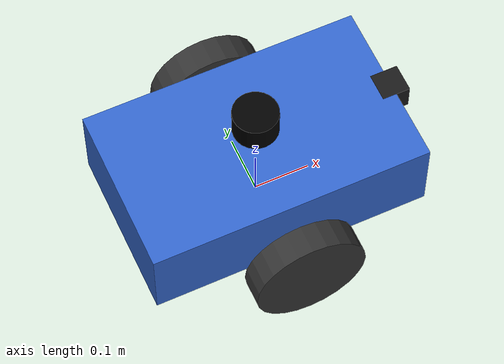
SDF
<?xml version="1.0"?>
<sdf version="1.9">
  <model name="robot">

    <link name="base_footprint">
      <pose>0 0 0 0 0 0</pose>
    </link>

    <joint name="base_footprint_joint" type="fixed">
      <parent>base_footprint</parent>
      <child>base_link</child>
    </joint>

    <link name="base_link">
      <pose>0 0 0.1 0 0 0</pose>
      <inertial>
        <mass>5.0</mass>
        <inertia><ixx>0.05</ixx><ixy>0</ixy><ixz>0</ixz><iyy>0.1</iyy><iyz>0</iyz><izz>0.1</izz></inertia>
      </inertial>
      <visual name="visual">
        <geometry><box><size>0.5 0.3 0.15</size></box></geometry>
        <material><ambient>0.2 0.4 0.8 1</ambient><diffuse>0.2 0.4 0.8 1</diffuse></material>
      </visual>
      <collision name="collision">
        <geometry><box><size>0.5 0.3 0.15</size></box></geometry>
      </collision>
    </link>

    <!-- Left wheel -->
    <link name="left_wheel">
      <pose>0 0.2 0.05 -1.5707 0 0</pose>
      <inertial>
        <mass>0.5</mass>
        <inertia><ixx>0.001</ixx><ixy>0</ixy><ixz>0</ixz><iyy>0.001</iyy><iyz>0</iyz><izz>0.002</izz></inertia>
      </inertial>
      <visual name="visual">
        <geometry><cylinder><radius>0.1</radius><length>0.05</length></cylinder></geometry>
        <material><ambient>0.2 0.2 0.2 1</ambient><diffuse>0.2 0.2 0.2 1</diffuse></material>
      </visual>
      <collision name="collision">
        <geometry><cylinder><radius>0.1</radius><length>0.05</length></cylinder></geometry>
      </collision>
    </link>

    <joint name="left_wheel_joint" type="revolute">
      <parent>base_link</parent>
      <child>left_wheel</child>
      <axis><xyz>0 0 1</xyz><limit><lower>-1e16</lower><upper>1e16</upper></limit></axis>
    </joint>

    <!-- Right wheel -->
    <link name="right_wheel">
      <pose>0 -0.2 0.05 -1.5707 0 0</pose>
      <inertial>
        <mass>0.5</mass>
        <inertia><ixx>0.001</ixx><ixy>0</ixy><ixz>0</ixz><iyy>0.001</iyy><iyz>0</iyz><izz>0.002</izz></inertia>
      </inertial>
      <visual name="visual">
        <geometry><cylinder><radius>0.1</radius><length>0.05</length></cylinder></geometry>
        <material><ambient>0.2 0.2 0.2 1</ambient><diffuse>0.2 0.2 0.2 1</diffuse></material>
      </visual>
      <collision name="collision">
        <geometry><cylinder><radius>0.1</radius><length>0.05</length></cylinder></geometry>
      </collision>
    </link>

    <joint name="right_wheel_joint" type="revolute">
      <parent>base_link</parent>
      <child>right_wheel</child>
      <axis><xyz>0 0 1</xyz><limit><lower>-1e16</lower><upper>1e16</upper></limit></axis>
    </joint>

    <!-- Front caster -->
    <link name="front_caster">
      <pose>0.2 0 0 0 0 0</pose>
      <inertial>
        <mass>0.1</mass>
        <inertia><ixx>0.0001</ixx><ixy>0</ixy><ixz>0</ixz><iyy>0.0001</iyy><iyz>0</iyz><izz>0.0001</izz></inertia>
      </inertial>
      <visual name="visual">
        <geometry><sphere><radius>0.05</radius></sphere></geometry>
        <material><ambient>0.5 0.5 0.5 1</ambient><diffuse>0.5 0.5 0.5 1</diffuse></material>
      </visual>
      <collision name="collision">
        <geometry><sphere><radius>0.05</radius></sphere></geometry>
        <surface><friction><ode><mu>0.01</mu><mu2>0.01</mu2></ode></friction></surface>
      </collision>
    </link>

    <joint name="front_caster_joint" type="fixed">
      <parent>base_link</parent>
      <child>front_caster</child>
    </joint>

    <!-- Lidar link -->
    <link name="lidar_link">
      <pose>0 0 0.225 0 0 0</pose>
      <inertial>
        <mass>0.1</mass>
        <inertia><ixx>0.00001</ixx><ixy>0</ixy><ixz>0</ixz><iyy>0.00001</iyy><iyz>0</iyz><izz>0.00001</izz></inertia>
      </inertial>
      <visual name="visual">
        <geometry><cylinder><radius>0.04</radius><length>0.05</length></cylinder></geometry>
        <material><ambient>0 0 0 1</ambient><diffuse>0 0 0 1</diffuse></material>
      </visual>
      <collision name="collision">
        <geometry><cylinder><radius>0.04</radius><length>0.05</length></cylinder></geometry>
      </collision>

      <sensor name="lidar" type="gpu_lidar">
        <always_on>1</always_on>
        <visualize>false</visualize>
        <update_rate>10</update_rate>
        <topic>scan</topic>
        <gz_frame_id>lidar_link</gz_frame_id>
        <lidar>
          <scan>
            <horizontal>
              <samples>360</samples>
              <resolution>1</resolution>
              <min_angle>-3.14159</min_angle>
              <max_angle>3.14159</max_angle>
            </horizontal>
          </scan>
          <range>
            <min>0.12</min>
            <max>12.0</max>
            <resolution>0.01</resolution>
          </range>
          <noise>
            <type>gaussian</type>
            <mean>0</mean>
            <stddev>0.005</stddev>
          </noise>
        </lidar>
      </sensor>
    </link>

    <joint name="lidar_joint" type="fixed">
      <parent>base_link</parent>
      <child>lidar_link</child>
    </joint>

    <!-- Camera link -->
    <link name="camera_link">
      <pose>0.25 0 0.15 0 0 0</pose>
      <inertial>
        <mass>0.1</mass>
        <inertia><ixx>0.0001</ixx><ixy>0</ixy><ixz>0</ixz><iyy>0.0001</iyy><iyz>0</iyz><izz>0.0001</izz></inertia>
      </inertial>
      <visual name="visual">
        <geometry><box><size>0.05 0.05 0.05</size></box></geometry>
        <material><ambient>0.1 0.1 0.1 1</ambient><diffuse>0.1 0.1 0.1 1</diffuse></material>
      </visual>
      <sensor name="camera" type="camera">
        <always_on>1</always_on>
        <update_rate>30</update_rate>
        <topic>camera/image</topic>
        <gz_frame_id>camera_link</gz_frame_id>
        <camera>
          <horizontal_fov>1.047</horizontal_fov>
          <image>
            <width>640</width>
            <height>480</height>
            <format>R8G8B8</format>
          </image>
          <clip>
            <near>0.1</near>
            <far>100</far>
          </clip>
        </camera>
      </sensor>
    </link>

    <joint name="camera_joint" type="fixed">
      <parent>base_link</parent>
      <child>camera_link</child>
    </joint>

    <!-- Diff Drive -->
    <plugin filename="libignition-gazebo-diff-drive-system.so"
            name="ignition::gazebo::systems::DiffDrive">
      <left_joint>left_wheel_joint</left_joint>
      <right_joint>right_wheel_joint</right_joint>
      <wheel_separation>0.4</wheel_separation>
      <wheel_radius>0.1</wheel_radius>
      <odom_publish_frequency>20</odom_publish_frequency>
      <topic>cmd_vel</topic>
      <odom_topic>odom</odom_topic>
      <tf_topic>tf</tf_topic>
      <frame_id>odom</frame_id>
      <child_frame_id>base_footprint</child_frame_id>
    </plugin>

  </model>
</sdf>
